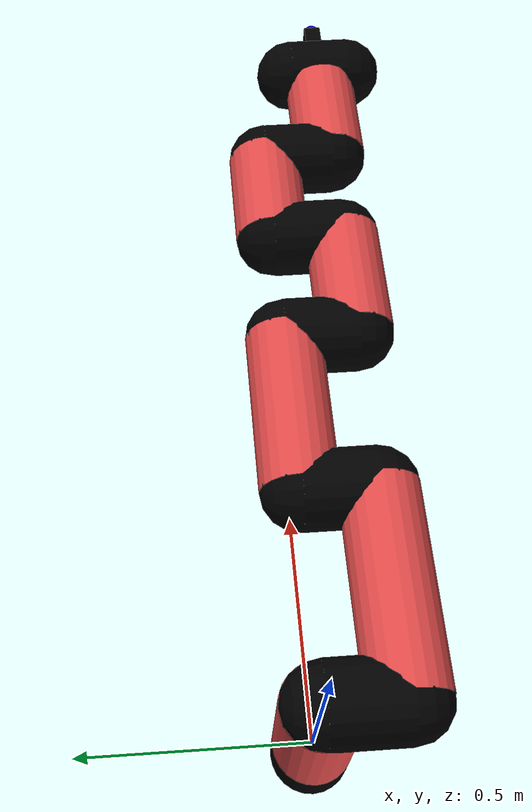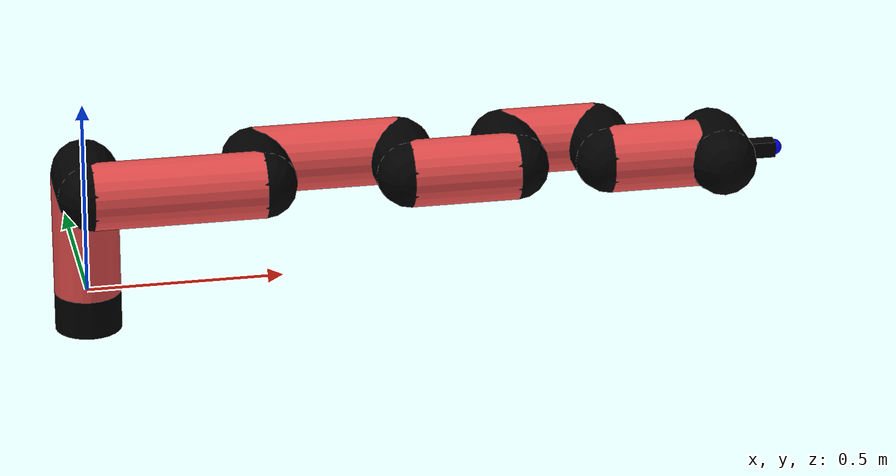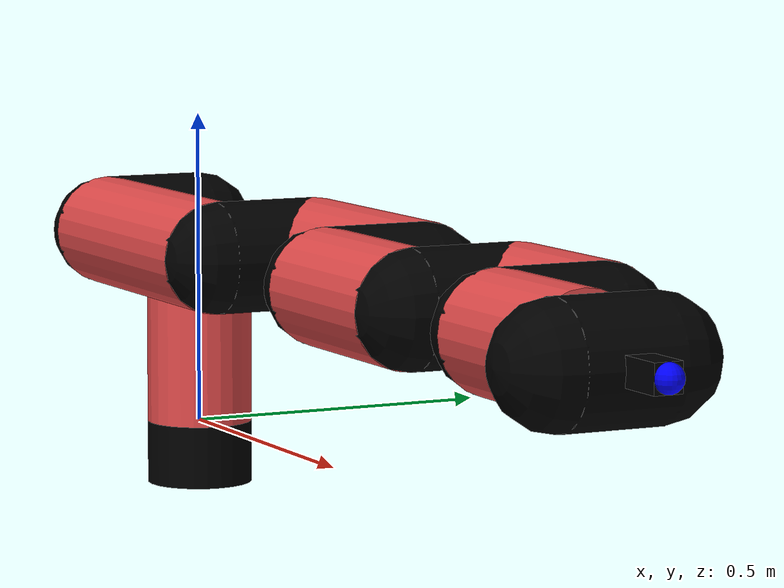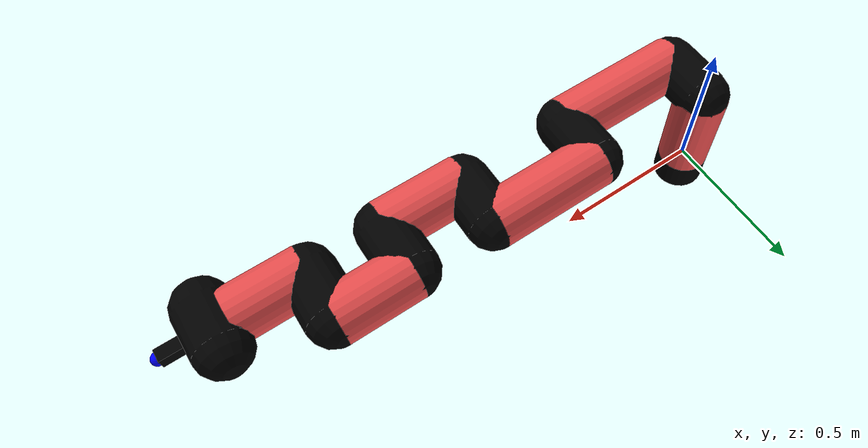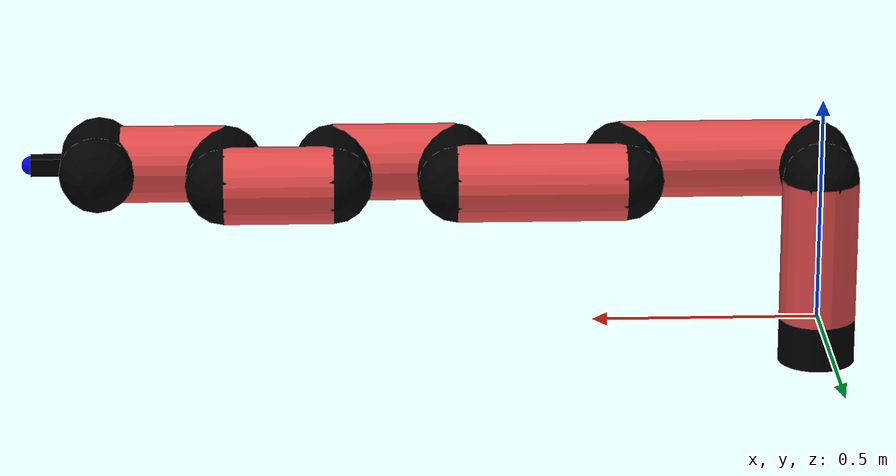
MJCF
<mujoco model="manipulator">
		<compiler angle="degree" coordinate="local" inertiafromgeom="auto" meshdir="meshes/"/>
		<option gravity="0 0 0" integrator="RK4" iterations="30" timestep="0.01"/>

		<default>
		<joint armature="1" limited="true" stiffness="10" damping="15" frictionloss="5.0"/>
		<geom conaffinity="1" condim="3" contype="1" friction=".5 .1 .1" margin="0.002"/>
		<motor ctrllimited="true"/>
		<position ctrllimited="true"/>
		</default>

		<asset>
		<texture builtin="gradient" height="100" rgb1="1.0 1.0 1.0" rgb2="1.0 1.0 1.0" type="skybox" width="100"/>
		<texture builtin="flat" height="32" name="arm_tex" rgb1="0.9 0.3 0.3" type="2d" width="32"/>
		<texture builtin="flat" height="32" name="gripper_tex" rgb1="0.0 0.0 0.0" type="cube" width="32"/>

		<material name="arm_mat" shininess="0.1" specular="0.1" texture="arm_tex"/>
		<material name="gripper_mat" shininess="1" specular="1" texture="gripper_tex"/>
		</asset>

		<worldbody>
		<light cutoff="45" diffuse=".8 .8 .8" dir="0 0.16 -1" directional="false" name="light" pos="0 -2.0 8.0" specular="0.3 0.3 0.3"/>

		<body name="base_link" pos="0 0 -0.1">
		<geom fromto="0 0 0 0 0 0.1" material="arm_mat" name="base_link" rgba="0.0 0.0 0.0 1" size="0.085" type="cylinder"/>
		</body>

		<body name="l1" pos="0 0 0">
<geom fromto="0 0 0 0 0 0.32" material="arm_mat" name="l1" rgba="0.9 0.3 0.3 1" size="0.085" type="cylinder"/>
<geom fromto="0 0 0.32 0 -0.16 0.32" material="arm_mat" name="l1_ex" rgba="0.0 0.0 0.0 1" size="0.085" type="capsule"/>
<joint axis="0 0 1" name="j1" pos="0 0 0" range="-90 90" damping="29.61" frictionloss="11.72"/>

<body name="l2" pos="0 -0.16 0.32">
<geom fromto="0 0 0 0.43 0 0" material="arm_mat" name="l2" rgba="0.9 0.3 0.3 1" size="0.085" type="cylinder"/>
<geom fromto="0.43 0 0 0.43 0.16 0" material="arm_mat" name="l2_ex" rgba="0.0 0.0 0.0 1" size="0.085" type="capsule"/>
<joint axis="0.0 1.0 0.0" name="j2" pos="0 0 0" range="-90 60" damping="34.2" frictionloss="10.91"/>

<body name="l3" pos="0.43 0.16 0">
<geom fromto="0 0 0 0.37 0 0" material="arm_mat" name="l3" rgba="0.9 0.3 0.3 1" size="0.085" type="cylinder"/>
<geom fromto="0.37 0 0 0.37 -0.16 0" material="arm_mat" name="l3_ex" rgba="0.0 0.0 0.0 1" size="0.085" type="capsule"/>
<joint axis="0.0 1.0 0.0" name="j3" pos="0 0 0" range="-30 60" damping="25.05" frictionloss="9.6"/>

<body name="l4" pos="0.37 -0.16 0">
<geom fromto="0 0 0 0.27 0 0" material="arm_mat" name="l4" rgba="0.9 0.3 0.3 1" size="0.085" type="cylinder"/>
<geom fromto="0.27 0 0 0.27 0.16 0" material="arm_mat" name="l4_ex" rgba="0.0 0.0 0.0 1" size="0.085" type="capsule"/>
<joint axis="0.0 1.0 0.0" name="j4" pos="0 0 0" range="-30 60" damping="31.75" frictionloss="11.78"/>

<body name="l5" pos="0.27 0.16 0">
<geom fromto="0 0 0 0.24 0 0" material="arm_mat" name="l5" rgba="0.9 0.3 0.3 1" size="0.085" type="cylinder"/>
<geom fromto="0.24 0 0 0.24 -0.16 0" material="arm_mat" name="l5_ex" rgba="0.0 0.0 0.0 1" size="0.085" type="capsule"/>
<joint axis="0.0 1.0 0.0" name="j5" pos="0 0 0" range="-30 60" damping="26.44" frictionloss="11.1"/>

<body name="l6" pos="0.24 -0.16 0">
<geom fromto="0 0 0 0.23 0 0" material="arm_mat" name="l6" rgba="0.9 0.3 0.3 1" size="0.085" type="cylinder"/>
<joint axis="0.0 1.0 0.0" name="j6" pos="0 0 0" range="-30 60" damping="26.3" frictionloss="10.15"/>

<body name="gripper" pos="0.23 0 0">
<geom fromto="0.05 -0.07 0 0.05 0.07 0" material="gripper_mat" name="gripper" rgba="0.0 0.0 0.0 1" size="0.085" type="capsule"/><joint axis="1 0 0" name="j7" pos="0 0 0" range="-90 90" damping="15" frictionloss="5.0"/><body name="finger" pos="0.1 0 0">
<geom fromto="0 0.0 0 0.1 0.0 0" material="gripper_mat" name="finger" rgba="0.0 0.0 0.0 1" size="0.020 0.06 0.06" type="box"/>
</body>
<site name="current" pos="0.2 0. 0.0" rgba="0. 0. 1.0 1" size="0.02" type="sphere"/>
</body>
</body>
</body>
</body>
</body>
</body>
</body>
</worldbody>
<actuator>
<motor ctrllimited="true" ctrlrange="-1.0 1.0" joint="j1" gear="95.08"/>
<motor ctrllimited="true" ctrlrange="-1.0 1.0" joint="j2" gear="82.5"/>
<motor ctrllimited="true" ctrlrange="-1.0 1.0" joint="j3" gear="76.4"/>
<motor ctrllimited="true" ctrlrange="-1.0 1.0" joint="j4" gear="79.19"/>
<motor ctrllimited="true" ctrlrange="-1.0 1.0" joint="j5" gear="78.38"/>
<motor ctrllimited="true" ctrlrange="-1.0 1.0" joint="j6" gear="72.88"/>
<motor ctrllimited="true" ctrlrange="-1.0 1.0" joint="j7" gear="80"/>
</actuator>
</mujoco>
